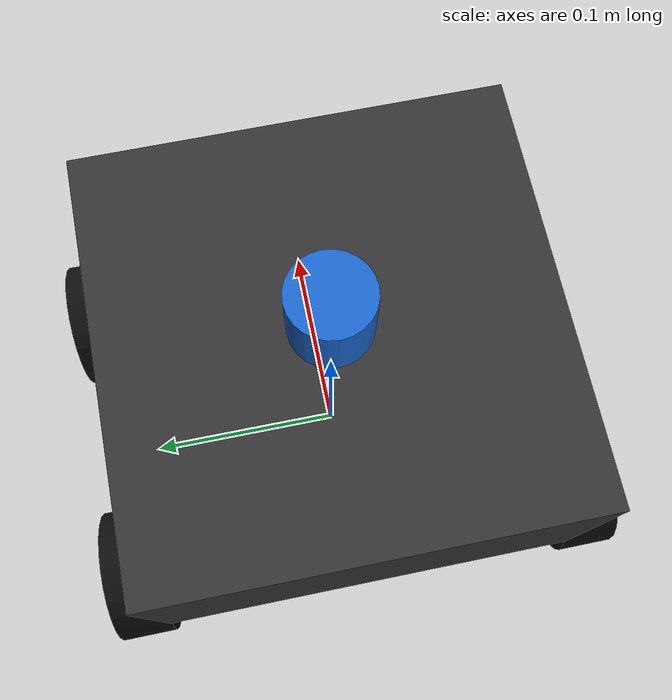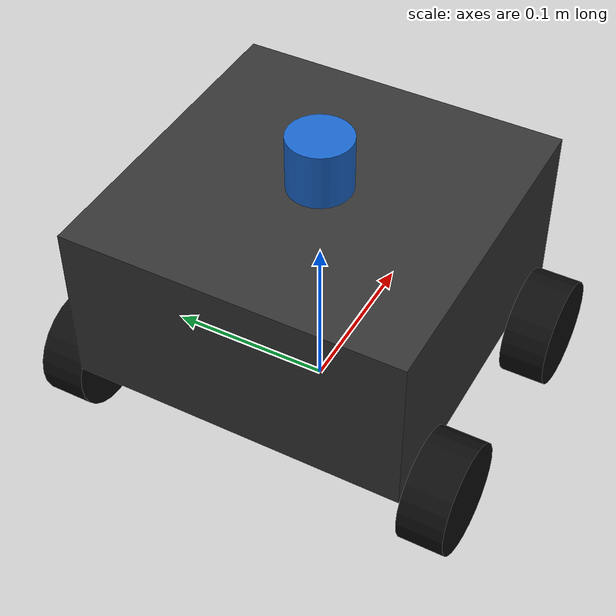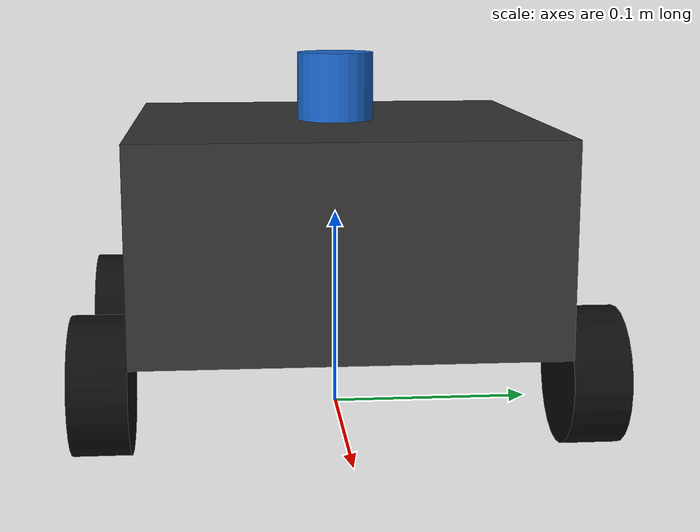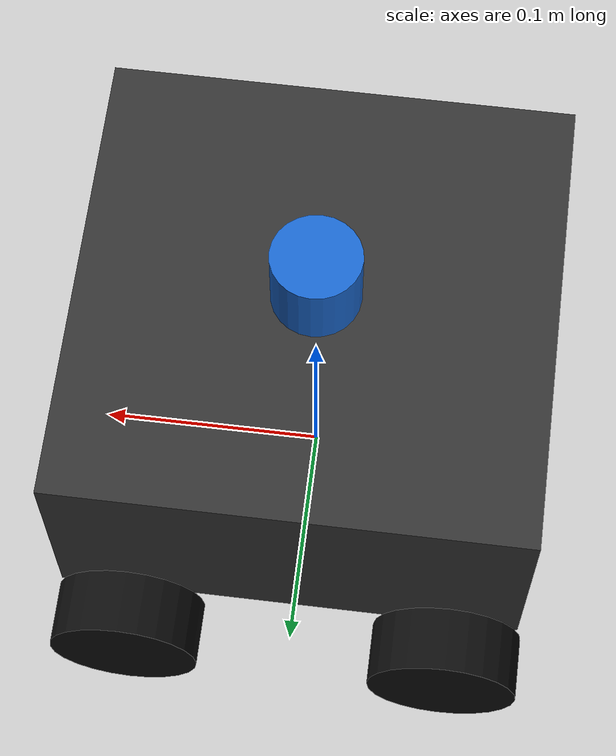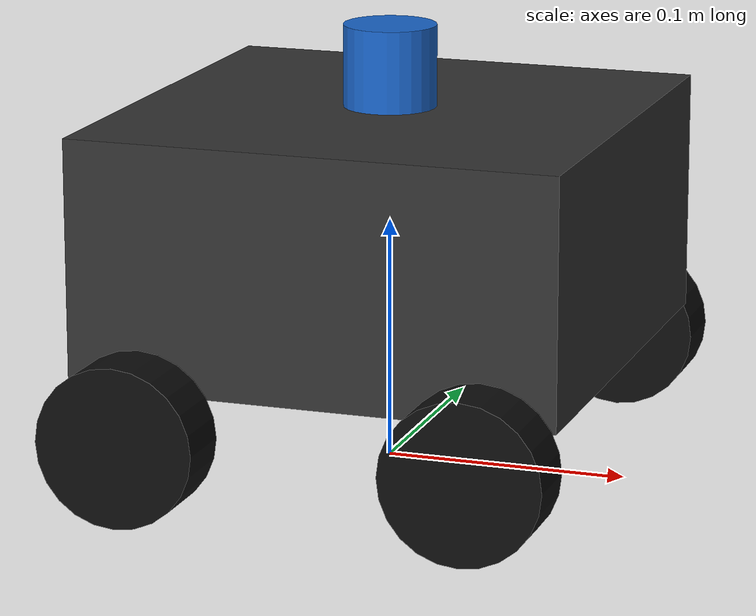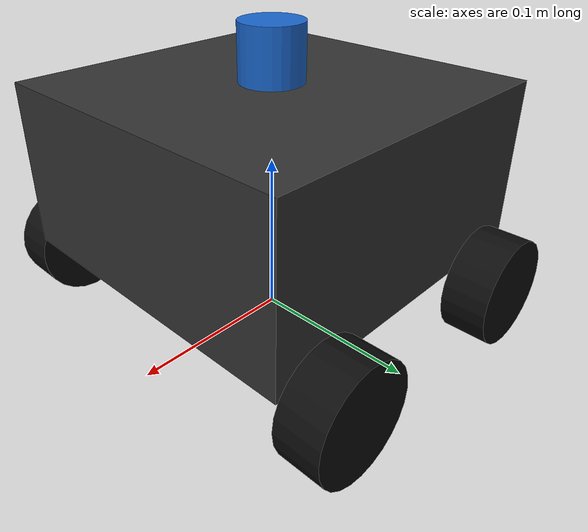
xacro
<?xml version="1.0"?>
<robot name="roverto" xmlns:xacro="http://www.ros.org/wiki/xacro">

  <!-- ================= CONSTANTS & DIMENSIONS ================= -->
  <!-- Chassis -->
  <xacro:property name="chassis_length" value="0.20"/>
  <xacro:property name="chassis_width"  value="0.20"/>
  <xacro:property name="chassis_height" value="0.10"/>
  <xacro:property name="chassis_mass"   value="1.5"/>

  <!-- Wheels -->
  <xacro:property name="wheel_radius"   value="0.0325"/>
  <xacro:property name="wheel_width"    value="0.027"/>
  <xacro:property name="wheel_mass"     value="0.1"/>

  <!-- Wheel Offsets -->
  <xacro:property name="wheel_x_offset" value="0.07"/>
  <xacro:property name="wheel_y_offset" value="0.1135"/>
  <xacro:property name="ground_clearance" value="0.015"/>

  <!-- LD19 LiDAR -->
  <xacro:property name="lidar_radius" value="0.019"/>
  <xacro:property name="lidar_height" value="0.0335"/>
  <xacro:property name="lidar_mass"   value="0.042"/>

  <!-- ================= INERTIA MACROS ================= -->
  <xacro:macro name="box_inertia" params="m x y z">
    <inertial>
      <mass value="${m}"/>
      <inertia ixx="${(m/12.0) * (y*y + z*z)}" ixy="0.0" ixz="0.0"
               iyy="${(m/12.0) * (x*x + z*z)}" iyz="0.0"
               izz="${(m/12.0) * (x*x + y*y)}"/>
    </inertial>
  </xacro:macro>

  <xacro:macro name="cylinder_inertia" params="m r h">
    <inertial>
      <mass value="${m}"/>
      <inertia ixx="${(m/12.0) * (3*r*r + h*h)}" ixy="0.0" ixz="0.0"
               iyy="${(m/12.0) * (3*r*r + h*h)}" iyz="0.0"
               izz="${(m/2.0) * (r*r)}"/>
    </inertial>
  </xacro:macro>

  <!-- ================= BASE FOOTPRINT & BASE LINK ================= -->
  <link name="base_footprint"/>

  <joint name="base_joint" type="fixed">
    <parent link="base_footprint"/>
    <child link="base_link"/>
    <!-- Elevates chassis bottom above wheel contact plane -->
    <origin xyz="0 0 ${wheel_radius + ground_clearance}" rpy="0 0 0"/>
  </joint>

  <link name="base_link">
    <visual>
      <origin xyz="0 0 ${chassis_height / 2.0}" rpy="0 0 0"/>
      <geometry>
        <box size="${chassis_length} ${chassis_width} ${chassis_height}"/>
      </geometry>
      <material name="rover_gray">
        <color rgba="0.2 0.2 0.2 1.0"/>
      </material>
    </visual>
    <collision>
      <origin xyz="0 0 ${chassis_height / 2.0}" rpy="0 0 0"/>
      <geometry>
        <box size="${chassis_length} ${chassis_width} ${chassis_height}"/>
      </geometry>
    </collision>
    <xacro:box_inertia m="${chassis_mass}" x="${chassis_length}" y="${chassis_width}" z="${chassis_height}"/>
  </link>

  <!-- ================= WHEEL MACRO ================= -->
  <xacro:macro name="wheel" params="prefix x_reflect y_reflect">
    <link name="${prefix}_wheel_link">
      <visual>
        <origin xyz="0 0 0" rpy="${pi/2.0} 0 0"/>
        <geometry>
          <cylinder radius="${wheel_radius}" length="${wheel_width}"/>
        </geometry>
        <material name="wheel_black">
          <color rgba="0.05 0.05 0.05 1.0"/>
        </material>
      </visual>
      <collision>
        <origin xyz="0 0 0" rpy="${pi/2.0} 0 0"/>
        <geometry>
          <cylinder radius="${wheel_radius}" length="${wheel_width}"/>
        </geometry>
      </collision>
      <xacro:cylinder_inertia m="${wheel_mass}" r="${wheel_radius}" h="${wheel_width}"/>
    </link>

    <joint name="${prefix}_wheel_joint" type="continuous">
      <parent link="base_link"/>
      <child link="${prefix}_wheel_link"/>
      <origin xyz="${x_reflect * wheel_x_offset} ${y_reflect * wheel_y_offset} ${-ground_clearance}" rpy="0 0 0"/>
      <axis xyz="0 1 0"/>
    </joint>
  </xacro:macro>

  <!-- Instantiate 4 Wheels -->
  <xacro:wheel prefix="front_left"  x_reflect="1"  y_reflect="1" />
  <xacro:wheel prefix="front_right" x_reflect="1"  y_reflect="-1" />
  <xacro:wheel prefix="rear_left"   x_reflect="-1" y_reflect="1" />
  <xacro:wheel prefix="rear_right"  x_reflect="-1" y_reflect="-1" />

  <!-- ================= LIDAR (LD19) LINK & JOINT ================= -->
  <joint name="lidar_joint" type="fixed">
    <parent link="base_link"/>
    <child link="laser_frame"/>
    <origin xyz="0.0 0.0 ${chassis_height + (lidar_height / 2.0)}" rpy="0 0 0"/>
  </joint>

  <link name="laser_frame">
    <visual>
      <origin xyz="0 0 0" rpy="0 0 0"/>
      <geometry>
        <cylinder radius="${lidar_radius}" length="${lidar_height}"/>
      </geometry>
      <material name="lidar_blue">
        <color rgba="0.1 0.4 0.8 1.0"/>
      </material>
    </visual>
    <collision>
      <origin xyz="0 0 0" rpy="0 0 0"/>
      <geometry>
        <cylinder radius="${lidar_radius}" length="${lidar_height}"/>
      </geometry>
    </collision>
    <xacro:cylinder_inertia m="${lidar_mass}" r="${lidar_radius}" h="${lidar_height}"/>
  </link>

  <!-- ================= GAZEBO SENSOR PLUGIN ================= -->
  <gazebo reference="laser_frame">
    <sensor name="lidar" type="gpu_lidar">
      <always_on>true</always_on>
      <visualize>true</visualize>
      <update_rate>10</update_rate>
      <topic>scan</topic>
      <gz_frame_id>laser_frame</gz_frame_id>
      <lidar>
        <scan>
          <horizontal>
            <samples>450</samples>
            <resolution>1</resolution>
            <min_angle>-3.14159265</min_angle>
            <max_angle>3.14159265</max_angle>
          </horizontal>
        </scan>
        <range>
          <min>0.02</min>
          <max>12.0</max>
          <resolution>0.01</resolution>
        </range>
        <noise>
          <type>gaussian</type>
          <mean>0.0</mean>
          <stddev>0.01</stddev>
        </noise>
      </lidar>
    </sensor>
  </gazebo>

</robot>
